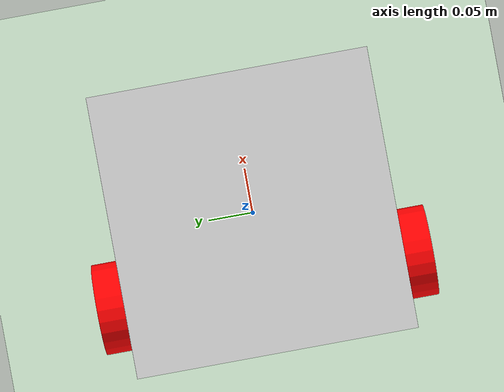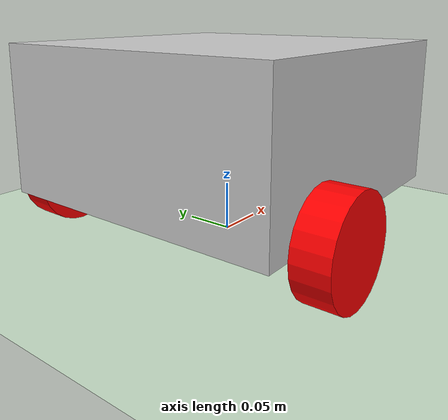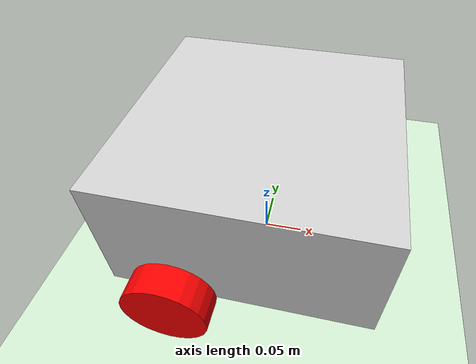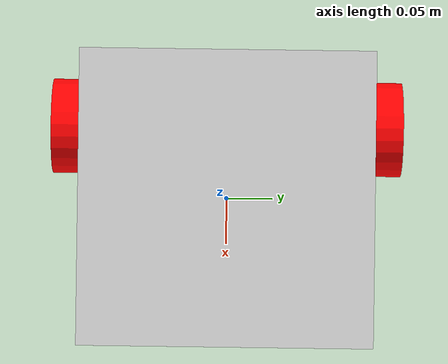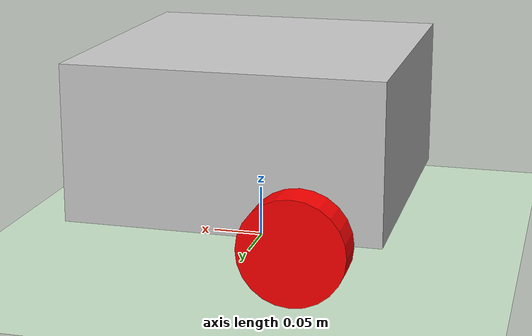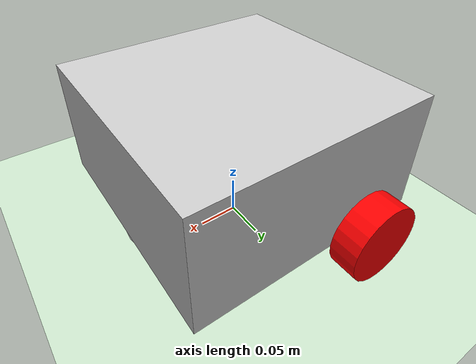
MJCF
<mujoco model="diffbot">
  <compiler angle="degree" coordinate="local"/>
  <option gravity="0 0 -9.81" integrator="RK4" timestep="0.002"/>

  <asset>
    <texture builtin="gradient" height="100" name="texplane" rgb1="0.6 0.5 0.1" rgb2="0.0 0.0 0.0" type="2d" width="100"/>
    <material name="MatPlane" reflectance="0.5" shininess="0.5" specular="1" texture="texplane"/>
  </asset>

  <worldbody>
    <light cutoff="100" diffuse="1 1 1" dir="-0 -1.5 -1.5" directional="true" exponent="1" pos="0 0 1.3" specular=".1 .1 .1"/>
    <geom conaffinity="1" condim="3" material="MatPlane" name="floor" pos="0 0 0" rgba="0.8 0.9 0.8 1" size="40 40 40" type="plane"/>
    <body name="chassis" pos="0 0 0.125">
      <joint name="base_joint" type="free"/>
      <geom name="chassis_geom" type="box" size="0.15 0.15 0.075" rgba="0.8 0.8 0.8 1" mass="1.0"/>
      <body name="left_wheel" pos="-0.075 0.075 -0.075">
        <joint name="left_wheel_joint" type="hinge" axis="0 1 0" limited="false"/>
        <geom type="cylinder" size="0.05 0.04" fromto="0 0.075 0 0 0.11 0" rgba="1 0 0 1"/>
      </body>
      <body name="right_wheel" pos="-0.075 -0.075 -0.075">
        <joint name="right_wheel_joint" type="hinge" axis="0 1 0" limited="false"/>
        <geom type="cylinder" size="0.05 0.04" fromto="0 -0.075 0 0 -0.11 0" rgba="1 0 0 1"/>
      </body>
      <body name="caster_wheel" pos="0.1 0 -0.075">
        <geom type="sphere" size="0.05" rgba="1 1 1 1" mass="0.01" friction="0.001 0.001 0"/>
      </body>
    </body>
  </worldbody>

  <actuator>
    <velocity name="left_wheel_motor" joint="left_wheel_joint" kv="0.1" ctrlrange="-20 20"/>
    <velocity name="right_wheel_motor" joint="right_wheel_joint" kv="0.1" ctrlrange="-20 20"/>
  </actuator>
</mujoco>
